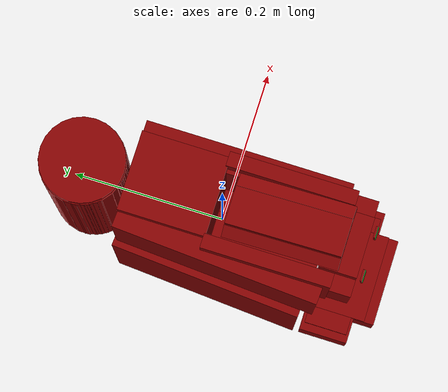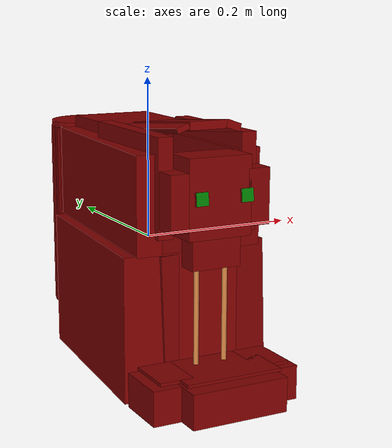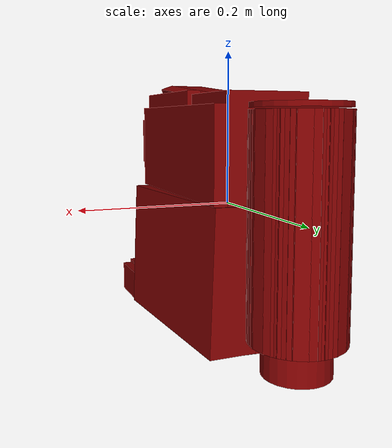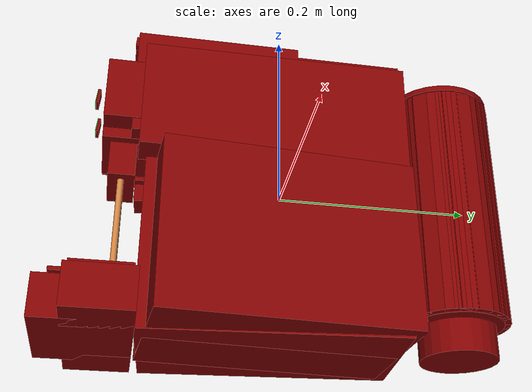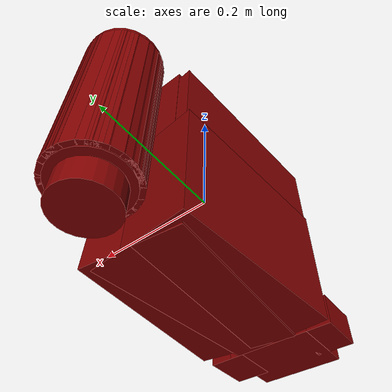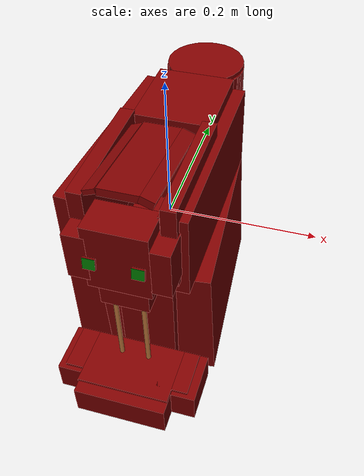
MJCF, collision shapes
<?xml version='1.0' encoding='UTF-8'?>
<mujoco model="model">
  <compiler angle="radian"/>
  <asset>
    <mesh file="visuals/Body001.obj" name="Body001_vis"/>
    <mesh file="visuals/Button001.obj" name="Button001_vis"/>
    <mesh file="visuals/Button002.obj" name="Button002_vis"/>
    <mesh file="visuals/Container001_Clear.obj" name="Container001_Clear_vis"/>
    <mesh file="visuals/Lid001.obj" name="Lid001_vis"/>
    <mesh file="visuals/Lid002.obj" name="Lid002_vis"/>
    <mesh file="visuals/Lid003.obj" name="Lid003_vis"/>
    <texture file="visuals/T_BC001.png" name="Body001_material" type="2d"/>
    <material name="Body001_material" rgba="1 1 1 1.0" texture="Body001_material" shininess="0.2512328028678894" specular="0.3103448502657381"/>
    <texture file="visuals/T_BC001.png" name="Button001_material" type="2d"/>
    <material name="Button001_material" rgba="1 1 1 1.0" texture="Button001_material" shininess="0.2512328028678894" specular="0.3103448502657381"/>
    <texture file="visuals/T_BC001.png" name="Button002_material" type="2d"/>
    <material name="Button002_material" rgba="1 1 1 1.0" texture="Button002_material" shininess="0.2512328028678894" specular="0.3103448502657381"/>
    <texture file="visuals/T_BC001.png" name="Container001_Clear_material" type="2d"/>
    <material name="Container001_Clear_material" rgba="1 1 1 0.13824884593486786" texture="Container001_Clear_material" shininess="0.2512328028678894" specular="0.3103448502657381"/>
    <texture file="visuals/T_BC001.png" name="Lid003_material" type="2d"/>
    <material name="Lid003_material" rgba="1 1 1 1.0" texture="Lid003_material" shininess="0.2512328028678894" specular="0.3103448502657381"/>
    <texture file="visuals/T_BC001.png" name="Lid001_material" type="2d"/>
    <material name="Lid001_material" rgba="1 1 1 1.0" texture="Lid001_material" shininess="0.2512328028678894" specular="0.3103448502657381"/>
    <texture file="visuals/T_BC001.png" name="Lid002_material" type="2d"/>
    <material name="Lid002_material" rgba="1 1 1 1.0" texture="Lid002_material" shininess="0.2512328028678894" specular="0.3103448502657381"/>
  </asset>
  <default>
    <default class="visual">
      <geom conaffinity="0" contype="0" group="1" type="mesh"/>
    </default>
    <default class="collision">
      <geom group="0" rgba="0.5 0 0 0.5"/>
    </default>
    <default class="spawn">
      <geom group="0" rgba="1 1 1 0.5" contype="0" conaffinity="0"/>
      <site group="0" rgba="1 1 1 0.5"/>
    </default>
    <default class="region">
      <geom group="1" conaffinity="0" contype="0" rgba="0 1 0 0"/>
    </default>
  </default>
  <worldbody>
    <body>
      <body name="object">
        <geom class="collision" type="box" pos="0.028696 -0.193978 0.083821" size="0.007607913576066494 0.007607907056808472 0.00020208954811096191" quat="0.7459015250205994 0.6660562753677368 0.0 0.0" name="start_button_2" rgba="0.0 0.5 0 0.5"/>
        <geom class="collision" type="box" pos="-0.028201 -0.194109 0.083836" size="0.007607912644743919 0.007607907056808472 0.00020018592476844788" quat="0.7459015250205994 0.6660562753677368 0.0 0.0" name="start_button_1" rgba="0.0 0.5 0 0.5"/>
        <site type="cylinder" rgba="0.8 0.5 0.25 1" size="0.0030428320169448853 0.06326339393854141" pos="-0.018589 -0.163170 -0.064709" name="coffee_liquid_left"/>
        <site type="cylinder" rgba="0.8 0.5 0.25 1" size="0.0031466877553611994 0.06326339393854141" pos="0.018033 -0.163170 -0.064709" name="coffee_liquid_right"/>
        <site rgba="0 0 0 0" size="0.009999999776482582 0.009999999776482582" pos="0.0 -0.162323 -0.117875" name="receptacle_place_site"/>
        <geom mesh="Body001_vis" type="mesh" solimp="0.998 0.998 0.001" solref="0.001 1" density="100" friction="0.95 0.3 0.1" class="visual" material="Body001_material"/>
        <geom class="collision" type="cylinder" pos="0.000000 0.181690 -0.146335" size="0.03961363062262535 0.016524437814950943" quat="1.0 0.0 0.0 0.0"/>
        <geom class="collision" type="box" pos="-0.014325 -0.007328 -0.075971" size="0.07095097750425339 0.12847650051116943 0.08733460307121277" quat="0.9993888735771179 0.0 -0.0 -0.034955043345689774"/>
        <geom class="collision" type="box" pos="0.003580 0.063670 0.078631" size="0.0515001155436039 0.05674178525805473 0.06494974344968796" quat="1.0 0.0 0.0 0.0"/>
        <geom class="collision" type="box" pos="-0.000000 -0.160746 0.081309" size="0.0393209308385849 0.023646311834454536 0.04621018096804619" quat="1.0 0.0 0.0 0.0"/>
        <geom class="collision" type="box" pos="-0.048360 -0.160746 0.078514" size="0.013603509403765202 0.023646311834454536 0.03279045596718788" quat="1.0 0.0 0.0 0.0"/>
        <geom class="collision" type="box" pos="0.049478 -0.160746 0.078514" size="0.013603509403765202 0.023646311834454536 0.03279045596718788" quat="1.0 0.0 0.0 0.0"/>
        <geom class="collision" type="box" pos="-0.000000 -0.162930 0.016709" size="0.03066980466246605 0.013373971916735172 0.01796042174100876" quat="1.0 0.0 0.0 0.0"/>
        <geom class="collision" type="box" pos="0.001332 -0.185836 -0.142676" size="0.06004676595330238 0.047027695924043655 0.02073153480887413" quat="1.0 0.0 0.0 0.0"/>
        <geom class="collision" type="box" pos="-0.067468 -0.171878 -0.142676" size="0.025794075801968575 0.033069442957639694 0.02073153480887413" quat="1.0 0.0 0.0 0.0"/>
        <geom class="collision" type="box" pos="0.066826 -0.171878 -0.142676" size="0.025794075801968575 0.033069442957639694 0.02073153480887413" quat="1.0 0.0 0.0 0.0"/>
        <geom class="collision" type="box" pos="-0.061205 -0.013612 0.071268" size="0.015446631237864494 0.1343405395746231 0.05758656561374664" quat="0.9994908571243286 0.0 -0.0 -0.03190695121884346"/>
        <geom class="collision" type="box" pos="0.054489 -0.013929 0.071268" size="0.017209811136126518 0.1343405395746231 0.05758656561374664" quat="1.0 0.0 0.0 0.0"/>
        <geom class="collision" type="box" pos="0.052204 -0.073706 0.091051" size="0.009339816868305206 0.08286666870117188 0.05757973715662956" quat="1.0 0.0 0.0 0.0"/>
        <geom class="collision" type="box" pos="-0.053939 -0.073706 0.091051" size="0.009339816868305206 0.08286666870117188 0.05757973715662956" quat="1.0 0.0 0.0 0.0"/>
        <geom class="collision" type="box" pos="0.013719 -0.006489 -0.075843" size="0.07095097750425339 0.12511514127254486 0.08733459562063217" quat="0.998998761177063 0.0007554793846793473 -0.018539974465966225 0.04070787876844406"/>
        <body name="Button001">
          <joint axis="0.0 0.9961668848991394 -0.08747246116399765" pos="-0.028449 -0.193068 0.083615" limited="true" name="Button001_joint" range="0.0 0.002" type="slide" damping="1" frictionloss="1" armature=".01" stiffness="0.2" springref="-0.1"/>
          <geom mesh="Button001_vis" type="mesh" solimp="0.998 0.998 0.001" solref="0.001 1" density="100" friction="0.95 0.3 0.1" class="visual" material="Button001_material"/>
          <geom class="collision" type="box" pos="-0.028336 -0.192227 0.083623" size="0.007607913110405207 0.007607913110405207 0.0012142325285822153" quat="0.7459015250205994 0.6660562753677368 0.0 0.0"/>
        </body>
        <body name="Button002">
          <joint axis="0.0 0.9954521059989929 -0.09526348114013672" pos="0.028840 -0.193068 0.083615" limited="true" name="Button002_joint" range="0.0 0.002" type="slide" damping="1" frictionloss="1" armature=".01" stiffness="0.2" springref="-0.1"/>
          <geom mesh="Button002_vis" type="mesh" solimp="0.998 0.998 0.001" solref="0.001 1" density="100" friction="0.95 0.3 0.1" class="visual" material="Button002_material"/>
          <geom class="collision" type="box" pos="0.028639 -0.192309 0.083632" size="0.007607913110405207 0.007607913110405207 0.0012965851929038763" quat="0.7459015250205994 0.6660562753677368 0.0 0.0"/>
        </body>
        <body name="Container001_Clear">
          <joint axis="0.0 0.0 1.0" pos="-0.000075 0.181676 -0.042315" limited="true" name="Container001_Clear_joint" range="0.0 0.05" type="slide" damping="1" frictionloss="1" armature=".01" stiffness="0.05"/>
          <geom mesh="Container001_Clear_vis" type="mesh" solimp="0.998 0.998 0.001" solref="0.001 1" density="100" friction="0.95 0.3 0.1" class="visual" material="Container001_Clear_material"/>
          <geom class="collision" type="cylinder" pos="0.000000 0.181690 -0.124829" size="0.048823967576026917 0.002825837815180421" quat="1.0 0.0 0.0 0.0"/>
          <geom class="collision" type="box" pos="-0.000000 0.130307 -0.002355" size="0.00850038044154644 0.0034357651602476835 0.12401857227087021" quat="1.0 0.0 0.0 0.0"/>
          <geom class="collision" type="box" pos="0.015352 0.132678 -0.002355" size="0.00850038044154644 0.0034357651602476835 0.12401857227087021" quat="0.9885026812553406 0.0 0.0 0.15120349824428558"/>
          <geom class="collision" type="box" pos="0.023413 0.135990 -0.002355" size="0.00850038044154644 0.0034357651602476835 0.12401857227087021" quat="0.9721153974533081 0.0 0.0 0.23450306057929993"/>
          <geom class="collision" type="box" pos="0.028748 0.139155 -0.002355" size="0.00850038044154644 0.0034357651602476835 0.12401857227087021" quat="0.9561820030212402 0.0 0.0 0.29277297854423523"/>
          <geom class="collision" type="box" pos="0.039604 0.149051 -0.002355" size="0.00850038044154644 0.0034357651602476835 0.12401857227087021" quat="0.9044972062110901 0.0 0.0 0.42647960782051086"/>
          <geom class="collision" type="box" pos="0.047543 0.162404 -0.002355" size="0.00850038044154644 0.0034357651602476835 0.12401857227087021" quat="0.8296126127243042 0.0 0.0 0.5583394169807434"/>
          <geom class="collision" type="box" pos="0.050115 0.170730 -0.002355" size="0.008500379510223866 0.00343576492741704 0.12401857227087021" quat="0.7792649269104004 0.0 0.0 0.6266946792602539"/>
          <geom class="collision" type="box" pos="0.051069 0.176859 -0.002355" size="0.00850038044154644 0.0034357651602476835 0.12401857227087021" quat="0.7400022149085999 0.0 0.0 0.6726044416427612"/>
          <geom class="collision" type="box" pos="0.050249 0.191986 -0.002355" size="0.00850038044154644 0.0034357651602476835 0.12401857227087021" quat="0.6327367424964905 0.0 0.0 0.7743669748306274"/>
          <geom class="collision" type="box" pos="0.044866 0.206558 -0.002355" size="0.00850038044154644 0.0034357651602476835 0.12401857227087021" quat="0.5083749890327454 0.0 0.0 0.8611358404159546"/>
          <geom class="collision" type="box" pos="0.040014 0.213796 -0.002355" size="0.00850038044154644 0.0034357651602476835 0.12401857227087021" quat="0.4335016906261444 0.0 0.0 0.9011527299880981"/>
          <geom class="collision" type="box" pos="0.035850 0.218395 -0.002355" size="0.00850038044154644 0.0034357651602476835 0.12401857227087021" quat="0.37829774618148804 0.0 0.0 0.9256839752197266"/>
          <geom class="collision" type="box" pos="0.023989 0.227061 -0.002355" size="0.00850038044154644 0.0034357651602476835 0.12401857227087021" quat="0.24205699563026428 0.0 0.0 0.9702620506286621"/>
          <geom class="collision" type="box" pos="0.009321 0.232179 -0.002355" size="0.00850038044154644 0.0034357651602476835 0.12401857227087021" quat="0.09256701171398163 0.0 0.0 0.9957064390182495"/>
          <geom class="collision" type="box" pos="0.000650 0.233040 -0.002355" size="0.00850038044154644 0.0034357651602476835 0.12401857227087021" quat="0.00777792651206255 0.0 0.0 0.9999697804450989"/>
          <geom class="collision" type="box" pos="-0.005547 0.232753 -0.002355" size="0.008500379510223866 0.00343576492741704 0.12401857227087021" quat="0.05261608585715294 0.0 -0.0 -0.9986147880554199"/>
          <geom class="collision" type="box" pos="-0.020861 0.228652 -0.002355" size="0.00850038044154644 0.0034357651602476835 0.12401857227087021" quat="0.2060772180557251 0.0 -0.0 -0.9785357117652893"/>
          <geom class="collision" type="box" pos="-0.033953 0.220291 -0.002355" size="0.00850038044154644 0.0034357651602476835 0.12401857227087021" quat="0.3516659736633301 0.0 -0.0 -0.9361255764961243"/>
          <geom class="collision" type="box" pos="-0.039992 0.214009 -0.002355" size="0.00850038044154644 0.0034357651602476835 0.12401857227087021" quat="0.42980024218559265 0.0 -0.0 -0.9029240012168884"/>
          <geom class="collision" type="box" pos="-0.043599 0.208961 -0.002355" size="0.00850038044154644 0.0034357651602476835 0.12401857227087021" quat="0.4835362136363983 0.0 -0.0 -0.8753243684768677"/>
          <geom class="collision" type="box" pos="-0.049541 0.195527 -0.002355" size="0.008500379510223866 0.00343576492741704 0.12401857227087021" quat="0.603721559047699 0.0 -0.0 -0.7971952557563782"/>
          <geom class="collision" type="box" pos="-0.051420 0.180107 -0.002355" size="0.0036816170904785395 0.008596740663051605 0.12401857227087021" quat="1.0 0.0 0.0 0.0"/>
          <geom class="collision" type="box" pos="-0.050416 0.171451 -0.002355" size="0.00850038044154644 0.0034357651602476835 0.12401857227087021" quat="0.7738319039344788 0.0 -0.0 -0.6333910226821899"/>
          <geom class="collision" type="box" pos="-0.048816 0.165457 -0.002355" size="0.00850038044154644 0.0034357651602476835 0.12401857227087021" quat="0.8106650710105896 0.0 -0.0 -0.5855101346969604"/>
          <geom class="collision" type="box" pos="-0.051435 0.180719 -0.002355" size="0.003581249387934804 0.00855813454836607 0.12401857227087021" quat="1.0 0.0 0.0 0.0"/>
          <geom class="collision" type="box" pos="-0.048801 0.165410 -0.002355" size="0.008500379510223866 0.00343576492741704 0.12401857227087021" quat="0.8109488487243652 0.0 -0.0 -0.5851171016693115"/>
          <geom class="collision" type="box" pos="-0.045350 0.157408 -0.002355" size="0.00850038044154644 0.0034357651602476835 0.12401857227087021" quat="0.8576557636260986 0.0 -0.0 -0.5142242312431335"/>
          <geom class="collision" type="box" pos="-0.042094 0.152127 -0.002355" size="0.00850038044154644 0.0034357651602476835 0.12401857227087021" quat="0.8871405720710754 0.0 -0.0 -0.46149930357933044"/>
          <geom class="collision" type="box" pos="-0.032013 0.141443 -0.002355" size="0.00850038044154644 0.0034357651602476835 0.12401857227087021" quat="0.9440107345581055 0.0 -0.0 -0.32991474866867065"/>
          <geom class="collision" type="box" pos="-0.018526 0.133735 -0.002355" size="0.00850038044154644 0.0034357651602476835 0.12401857227087021" quat="0.9830413460731506 0.0 -0.0 -0.1833839863538742"/>
          <geom class="collision" type="box" pos="-0.010157 0.131306 -0.002355" size="0.00850038044154644 0.0034357651602476835 0.12401857227087021" quat="0.9950533509254456 0.0 -0.0 -0.09934169054031372"/>
          <geom class="collision" type="box" pos="-0.004012 0.130458 -0.002355" size="0.00850038044154644 0.0034357651602476835 0.12401857227087021" quat="0.9992361664772034 0.0 -0.0 -0.03907749429345131"/>
          <body name="Lid003">
            <joint axis="0.0 0.0 1.0" pos="-0.000075 0.181676 0.122897" limited="true" name="Lid003_joint" range="0.0 0.05" type="slide" damping="1" frictionloss="1" armature=".01" stiffness="0.05"/>
            <geom mesh="Lid003_vis" type="mesh" solimp="0.998 0.998 0.001" solref="0.001 1" density="100" friction="0.95 0.3 0.1" class="visual" material="Lid003_material"/>
            <geom class="collision" type="cylinder" pos="0.000000 0.181690 0.126572" size="0.0544167086482048 0.002825837815180421" quat="1.0 0.0 0.0 0.0"/>
          </body>
        </body>
        <body name="Lid001">
          <joint axis="-1.0 0.0 0.0" pos="-0.001685 0.002047 0.147781" limited="true" name="Lid001_joint" range="0.0 1.5707963267948966" type="hinge" damping="1" frictionloss="1" armature=".01" stiffness="0.05"/>
          <geom mesh="Lid001_vis" type="mesh" solimp="0.998 0.998 0.001" solref="0.001 1" density="100" friction="0.95 0.3 0.1" class="visual" material="Lid001_material"/>
          <geom class="collision" type="box" pos="-0.000582 -0.084842 0.150976" size="0.024652011692523956 0.07436910271644592 0.0048652286641299725" quat="0.9984737634658813 -0.05522807687520981 -0.0 0.0"/>
          <geom class="collision" type="box" pos="0.030397 -0.085101 0.148645" size="0.009061611257493496 0.07436910271644592 0.004768600687384605" quat="0.9838422536849976 -0.05441880226135254 0.1703064739704132 -0.009420071728527546"/>
          <geom class="collision" type="box" pos="-0.033445 -0.085082 0.148811" size="0.007928354665637016 0.07436910271644592 0.0032166189048439264" quat="0.9838421940803528 -0.05441881716251373 -0.17030689120292664 0.009420101530849934"/>
        </body>
        <body name="Lid002">
          <joint axis="0.0 0.0 1.0" pos="-0.001335 -0.175264 -0.117221" limited="true" name="Lid002_joint" range="0.0 0.05" type="slide" damping="1" frictionloss="1" armature=".01" stiffness="0.05"/>
          <geom mesh="Lid002_vis" type="mesh" solimp="0.998 0.998 0.001" solref="0.001 1" density="100" friction="0.95 0.3 0.1" class="visual" material="Lid002_material"/>
          <geom class="collision" type="box" pos="0.001332 -0.180858 -0.117221" size="0.06004676595330238 0.03832380846142769 0.0017765340162441134" quat="1.0 0.0 0.0 0.0"/>
          <geom class="collision" type="box" pos="-0.062330 -0.171861 -0.117221" size="0.020656179636716843 0.02932683750987053 0.0017765340162441134" quat="1.0 0.0 0.0 0.0"/>
          <geom class="collision" type="box" pos="0.061688 -0.171861 -0.117221" size="0.020656177774071693 0.02932683564722538 0.0017765340162441134" quat="1.0 0.0 0.0 0.0"/>
        </body>
        <geom class="region" name="reg_main" type="box" pos="0.0 5.000000000005e-07 0.0" size="0.097357 0.2364365 0.163841"/>
      </body>
    </body>
  </worldbody>
  <actuator>
    <motor name="Button001_joint_actuator" joint="Button001_joint" gear="0.5"/>
    <motor name="Button002_joint_actuator" joint="Button002_joint" gear="0.5"/>
    <motor name="Container001_Clear_joint_actuator" joint="Container001_Clear_joint" gear="10"/>
    <motor name="Lid001_joint_actuator" joint="Lid001_joint" gear="10"/>
    <motor name="Lid002_joint_actuator" joint="Lid002_joint" gear="10"/>
    <motor name="Lid003_joint_actuator" joint="Lid003_joint" gear="10"/>
  </actuator>
</mujoco>
